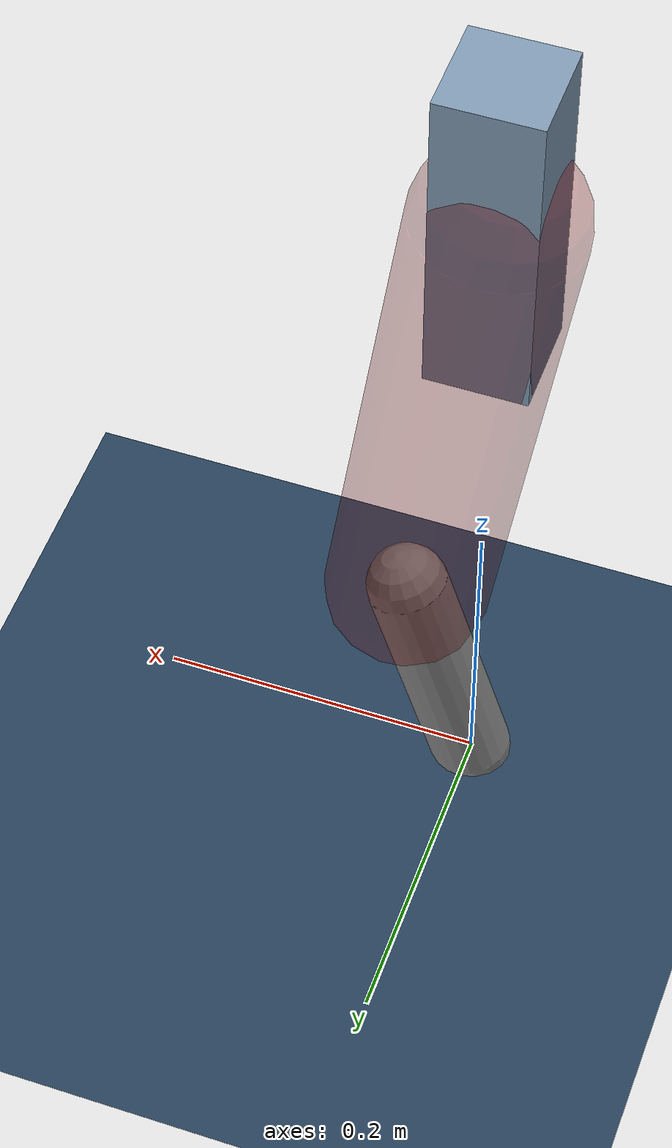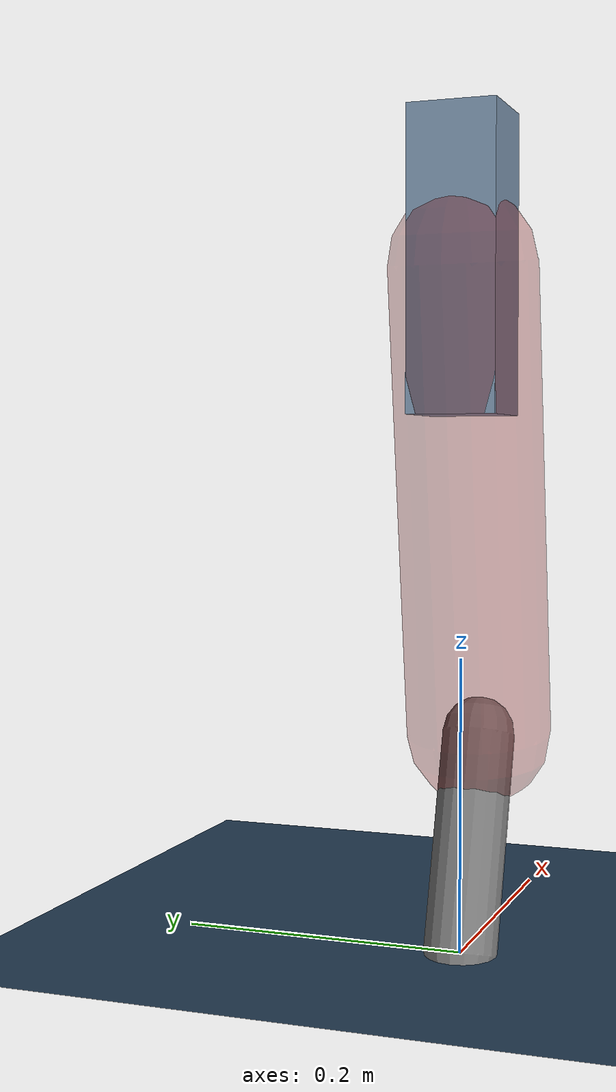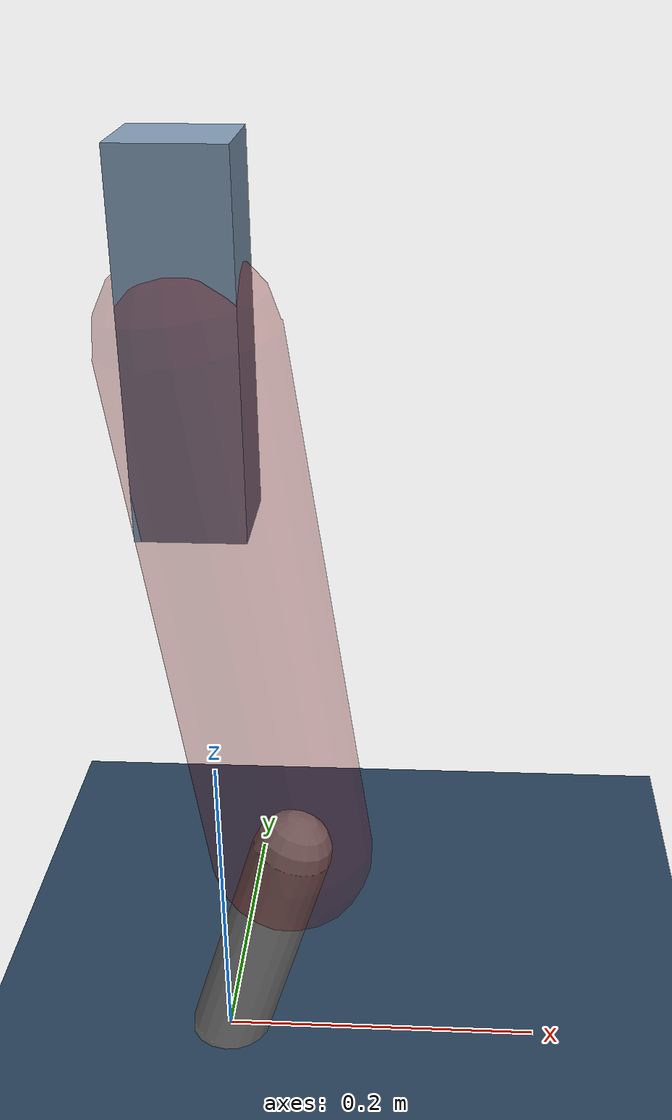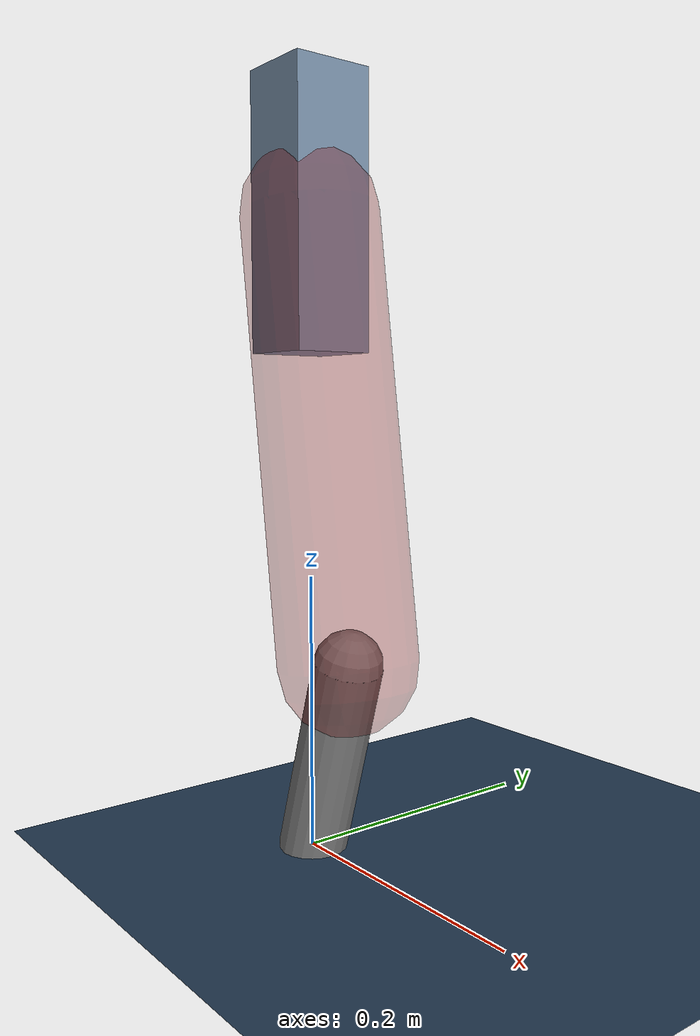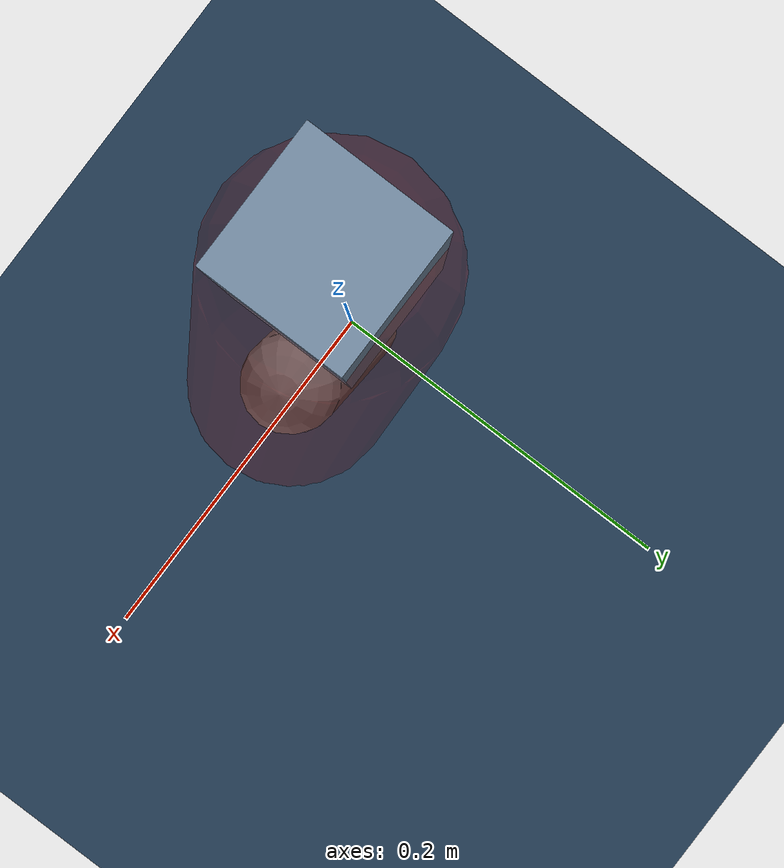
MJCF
<mujoco model="Hopper2D">
	<compiler inertiafromgeom="true" angle="radian" />
	<option timestep="0.001" integrator="implicit" cone="elliptic" solver="Newton" tolerance="1e-10" />

	<default>
		<geom contype="1" conaffinity="1" condim="3" friction="2 0.005 0.0001" solref="0.005 1" />
		<joint limited="true" damping="0.1" />
	</default>

	<asset>
		<texture name="skybox" type="skybox" builtin="gradient" rgb1=".4 .6 .8" rgb2="0 0 0" width="800" height="800" />
		<texture name="grid" type="2d" builtin="checker" rgb1=".1 .2 .3" rgb2=".2 .3 .4" width="300" height="300" mark="edge" markrgb=".2 .3 .4" />
		<material name="ground" texture="grid" texrepeat="1 1" texuniform="true" reflectance="0.1" />
		<material name="leg" rgba="0.5 0.6 0.7 1" />
	</asset>

	<worldbody>

		<geom name="floor" type="plane" size="5 5 0.25" material="ground" />

		<light directional="false" diffuse="0.8 0.8 0.8" specular="0.3 0.3 0.3" pos="0 0 2" dir="0 0 -1" />
		<light mode="targetbodycom" target="base" directional="false" diffuse="0.8 0.8 0.8" specular="0.3 0.3 0.3" pos="0 0 2" dir="0 0 -1" />

		<camera name="fixed" pos="0 -2 1" xyaxes="1 0 0 0 0 1" />
		<camera name="tracking" mode="trackcom" pos="0 -3 1" />

		<body name="root" pos="0 0 0.46234700933072714">
			<joint name="slide_x" type="slide" axis="1 0 0" range="-100 100" />
			<joint name="slide_z" type="slide" axis="0 0 1" range="0 10" />

			<body name="base" pos="0 0 0">
				<geom name="torso" type="box" size="0.03 0.03 0.1" mass="3.569" material="leg" />

				<body name="link1" pos="0 0 0" euler="0 1.4311426737842514 0">
					<joint type="hinge" axis="0 -1 0" pos="0 0 0" name="hinge1" limited="true" range="-3.14 3.14" stiffness="0" damping="0.1" />
					<geom name="thigh" type="capsule" fromto="0 0 0 0.32227967801679674 0 0" size="0.05" rgba="0.5 0 0 0.3" mass="1.049483098447031" />

					<body name="link2" pos="0.32227967801679674 0 0" euler="0 0.44323707056238315 0">
						<joint type="hinge" axis="0 -1 0" pos="0 0 0" name="hinge2" limited="true" range="-3.14 3.14" stiffness="0" damping="0.1" />
						<geom name="shank" type="capsule" fromto="0 0 0 0.15006733131393044 0 0" size="0.025" mass="0.3577605981825374" />

					</body>
				</body>
			</body>
		</body>
	</worldbody>

	<actuator>
		<motor name="torque1" joint="hinge1" ctrlrange="-224.54384944214053 224.54384944214053" ctrllimited="true" gear="1" />
		<motor name="torque2" joint="hinge2" ctrlrange="-54.76072379432604 54.76072379432604" ctrllimited="true" gear="1" />
	</actuator>
</mujoco>
